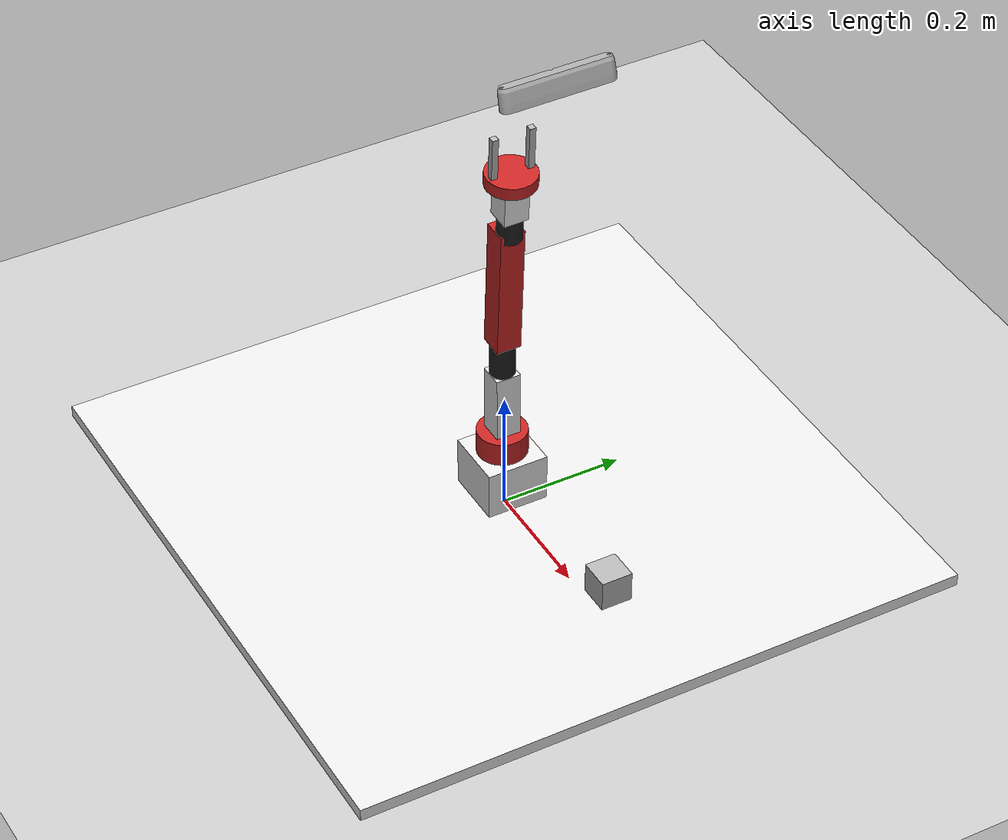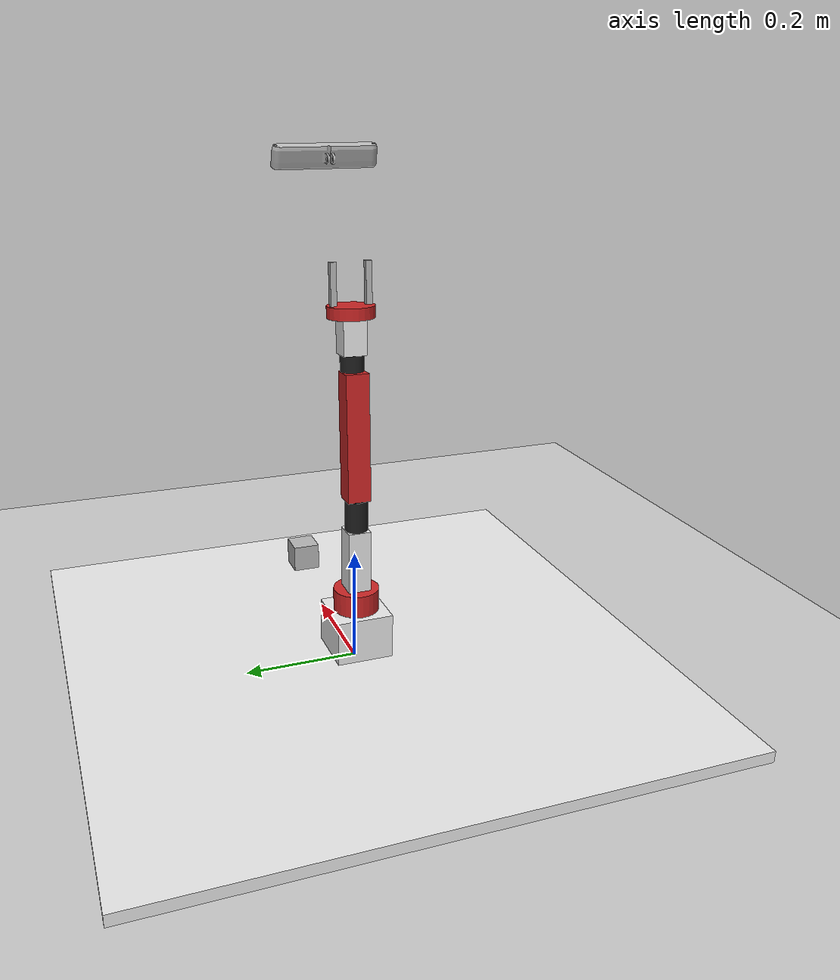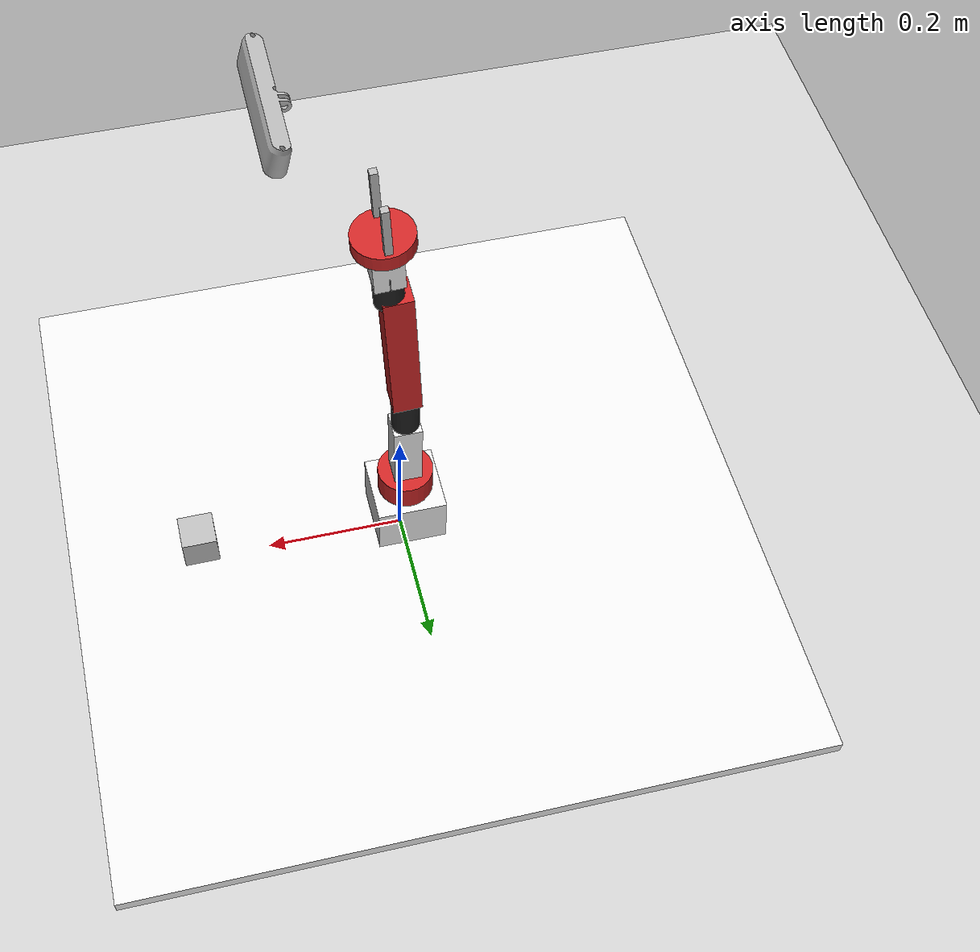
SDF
<sdf version="1.6">
 <world name="default">
  <light name="sun" type="directional">
   <pose>0 0 10 0 -0 0</pose>
   <diffuse>0.8 0.8 0.8 1</diffuse>
   <specular>0.1 0.1 0.1 1</specular>
   <attenuation>
    <range>1000</range>
    <constant>0.9</constant>
    <linear>0.01</linear>
    <quadratic>0.001</quadratic>
   </attenuation>
   <direction>-0.5 0.5 -1</direction>
  </light>
  <model name="ground_plane">
   <static>1</static>
   <link name="link">
    <collision name="collision">
     <geometry><plane><normal>0 0 1</normal><size>100 100</size></plane></geometry>
     <surface><friction><ode><mu>100</mu><mu2>50</mu2></ode></friction></surface>
    </collision>
    <visual name="visual">
     <cast_shadows>0</cast_shadows>
     <geometry><plane><normal>0 0 1</normal><size>100 100</size></plane></geometry>
     <material>
      <script><uri>file://media/materials/scripts/gazebo.material</uri><name>Gazebo/Grey</name></script>
     </material>
    </visual>
   </link>
  </model>
  <gravity>0 0 -9.8</gravity>
  <magnetic_field>6e-06 2.3e-05 -4.2e-05</magnetic_field>
  <atmosphere type="adiabatic"/>
  <physics name="default_physics" default="0" type="ode">
   <max_step_size>0.001</max_step_size>
   <real_time_factor>1</real_time_factor>
   <real_time_update_rate>1000</real_time_update_rate>
  </physics>
  <scene><ambient>0.4 0.4 0.4 1</ambient><background>0.7 0.7 0.7 1</background><shadows>1</shadows></scene>
  <spherical_coordinates>
   <surface_model>EARTH_WGS84</surface_model>
   <latitude_deg>0</latitude_deg>
   <longitude_deg>0</longitude_deg>
   <elevation>0</elevation>
   <heading_deg>0</heading_deg>
  </spherical_coordinates>
  <model name="seven_dof_arm">
   <link name="base_link">
    <inertial>
     <pose>0.026613 0.000111 0.148274 0 -0 0</pose>
     <mass>1.2247</mass>
     <inertia>
      <ixx>1.11989</ixx>
      <ixy>-1.6741e-05</ixy>
      <ixz>-0.0215074</ixz>
      <iyy>0.623738</iyy>
      <iyz>-8.81946e-05</iyz>
      <izz>1.00392</izz>
     </inertia>
    </inertial>
    <collision name="base_link_collision">
     <pose>0 0 0 1.57079 -0 0</pose>
     <geometry><box><size>0.1 0.1 0.1</size></box></geometry>
    </collision>
    <collision name="base_link_fixed_joint_lump__bottom_link_collision_1">
     <pose>0 0 -0.04 0 -0 0</pose>
     <geometry><box><size>1 1 0.02</size></box></geometry>
    </collision>
    <visual name="base_link_visual">
     <pose>0 0 0 1.57079 -0 0</pose>
     <geometry><box><size>0.1 0.1 0.1</size></box></geometry>
     <material>
      <script><name>Gazebo/White</name><uri>file://media/materials/scripts/gazebo.material</uri></script>
     </material>
    </visual>
    <visual name="base_link_fixed_joint_lump__bottom_link_visual_1">
     <pose>0 0 -0.04 0 -0 0</pose>
     <geometry><box><size>1 1 0.02</size></box></geometry>
     <material>
      <script><name>Gazebo/White</name><uri>file://media/materials/scripts/gazebo.material</uri></script>
     </material>
    </visual>
    <visual name="base_link_fixed_joint_lump__rgbd_camera_link_visual_2">
     <pose>0.15 0 0.8 0 1.309 0</pose>
     <geometry>
      <mesh>
       <scale>1 1 1</scale>
       <uri>/home/jan/catkin_ws/src/mastering_ros_robot_description_pkg/meshes/sensors/xtion_pro_live/xtion_pro_live.dae</uri>
      </mesh>
     </geometry>
     <material><script><uri>__default__</uri><name>__default__</name></script></material>
    </visual>
    <sensor name="rgbd_camera_frame_sensor" type="depth">
     <always_on>1</always_on>
     <update_rate>6</update_rate>
     <camera name="__default__">
      <horizontal_fov>1.01229</horizontal_fov>
      <image><format>R8G8B8</format><width>800</width><height>600</height></image>
      <clip><near>0.05</near><far>1.5</far></clip>
     </camera>
     <plugin name="camera_plugin" filename="libgazebo_ros_openni_kinect.so">
      <baseline>0.2</baseline>
      <alwaysOn>true</alwaysOn>
      <updateRate>20.0</updateRate>
      <cameraName>camera_ir</cameraName>
      <imageTopicName>/camera/color/image_raw</imageTopicName>
      <cameraInfoTopicName>/camera/color/camera_info</cameraInfoTopicName>
      <depthImageTopicName>/camera/depth/image_raw</depthImageTopicName>
      <depthImageCameraInfoTopicName>/camera/depth/camera_info</depthImageCameraInfoTopicName>
      <pointCloudTopicName>/camera/depth/points</pointCloudTopicName>
      <frameName>depth_camera_link</frameName>
      <pointCloudCutoff>0.05</pointCloudCutoff>
      <distortionK1>0</distortionK1>
      <distortionK2>0</distortionK2>
      <distortionK3>0</distortionK3>
      <distortionT1>0</distortionT1>
      <distortionT2>0</distortionT2>
      <CxPrime>0</CxPrime>
      <Cx>0</Cx>
      <Cy>0</Cy>
      <focalLength>0</focalLength>
      <hackBaseline>0</hackBaseline>
     </plugin>
     <pose>0.15 0 0.8 0 1.309 0</pose>
    </sensor>
    <sensor name="rgbd_camera_frame_sensor" type="depth">
     <always_on>1</always_on>
     <update_rate>6</update_rate>
     <camera name="__default__">
      <horizontal_fov>1.01229</horizontal_fov>
      <image><format>R8G8B8</format><width>800</width><height>600</height></image>
      <clip><near>0.05</near><far>1.5</far></clip>
     </camera>
     <plugin name="rgbd_camera_frame_controller" filename="libgazebo_ros_openni_kinect.so">
      <alwaysOn>true</alwaysOn>
      <updateRate>6.0</updateRate>
      <cameraName>rgbd_camera</cameraName>
      <imageTopicName>rgb/image_raw</imageTopicName>
      <cameraInfoTopicName>rgb/camera_info</cameraInfoTopicName>
      <pointCloudTopicName>rgb/points</pointCloudTopicName>
      <depthImageTopicName>depth/image_raw</depthImageTopicName>
      <depthImageCameraInfoTopicName>depth/camera_info</depthImageCameraInfoTopicName>
      <frameName>rgbd_camera_optical_frame</frameName>
      <pointCloudCutoff>0.05</pointCloudCutoff>
      <pointCloudCutoffMax>5</pointCloudCutoffMax>
      <rangeMax>1.5</rangeMax>
      <robotNamespace>/</robotNamespace>
     </plugin>
     <pose>0.15 0 0.8 0 1.309 0</pose>
    </sensor>
   </link>
   <link name="shoulder_pan_link">
    <pose>0 0 0.05 3.14159 1.57079 3.14159</pose>
    <inertial>
     <mass>1</mass>
     <inertia><ixx>1</ixx><ixy>0</ixy><ixz>0</ixz><iyy>0.5</iyy><iyz>0</iyz><izz>1</izz></inertia>
    </inertial>
    <collision name="shoulder_pan_link_collision">
     <pose>0 0 0 3.14159 1.57079 3.14159</pose>
     <geometry><cylinder><length>0.08</length><radius>0.04</radius></cylinder></geometry>
    </collision>
    <visual name="shoulder_pan_link_visual">
     <pose>0 0 0 3.14159 1.57079 3.14159</pose>
     <geometry><cylinder><length>0.08</length><radius>0.04</radius></cylinder></geometry>
     <material>
      <script><name>Gazebo/Red</name><uri>file://media/materials/scripts/gazebo.material</uri></script>
     </material>
    </visual>
   </link>
   <joint name="shoulder_pan_joint" type="revolute">
    <child>shoulder_pan_link</child>
    <parent>base_link</parent>
    <axis>
     <xyz>-1e-06 0 1</xyz>
     <limit><lower>-2.61799</lower><upper>1.98395</upper><effort>300</effort><velocity>1</velocity></limit>
     <dynamics>
      <damping>50</damping>
      <friction>1</friction>
      <spring_reference>0</spring_reference>
      <spring_stiffness>0</spring_stiffness>
     </dynamics>
     <use_parent_model_frame>1</use_parent_model_frame>
    </axis>
   </joint>
   <link name="shoulder_pitch_link">
    <pose>-0 0.0021 0.091 0 1e-06 1.5708</pose>
    <inertial>
     <mass>1</mass>
     <inertia><ixx>1</ixx><ixy>0</ixy><ixz>0</ixz><iyy>0.5</iyy><iyz>0</iyz><izz>1</izz></inertia>
    </inertial>
    <collision name="shoulder_pitch_link_collision">
     <pose>-0.002 0 0.04 3.14159 1.57079 3.14159</pose>
     <geometry><box><size>0.14 0.04 0.04</size></box></geometry>
    </collision>
    <visual name="shoulder_pitch_link_visual">
     <pose>-0.002 0 0.04 3.14159 1.57079 3.14159</pose>
     <geometry><box><size>0.14 0.04 0.04</size></box></geometry>
     <material>
      <script><name>Gazebo/White</name><uri>file://media/materials/scripts/gazebo.material</uri></script>
     </material>
    </visual>
   </link>
   <joint name="shoulder_pitch_joint" type="revolute">
    <child>shoulder_pitch_link</child>
    <parent>shoulder_pan_link</parent>
    <axis>
     <xyz>0 1 -1e-06</xyz>
     <limit><lower>-1.19963</lower><upper>1.89994</upper><effort>300</effort><velocity>1</velocity></limit>
     <dynamics>
      <damping>50</damping>
      <friction>1</friction>
      <spring_reference>0</spring_reference>
      <spring_stiffness>0</spring_stiffness>
     </dynamics>
     <use_parent_model_frame>1</use_parent_model_frame>
    </axis>
   </joint>
   <link name="elbow_roll_link">
    <pose>-0 0.0001 0.2116 -0.785403 1.57079 -1.57079</pose>
    <inertial>
     <mass>1</mass>
     <inertia><ixx>1</ixx><ixy>0</ixy><ixz>0</ixz><iyy>0.5</iyy><iyz>0</iyz><izz>1</izz></inertia>
    </inertial>
    <collision name="elbow_roll_link_collision">
     <pose>-0.015 0 -0 3.14159 1.57079 3.14159</pose>
     <geometry><cylinder><length>0.06</length><radius>0.02</radius></cylinder></geometry>
    </collision>
    <visual name="elbow_roll_link_visual">
     <pose>-0.015 0 -0 3.14159 1.57079 3.14159</pose>
     <geometry><cylinder><length>0.06</length><radius>0.02</radius></cylinder></geometry>
     <material>
      <script><name>Gazebo/Black</name><uri>file://media/materials/scripts/gazebo.material</uri></script>
     </material>
    </visual>
   </link>
   <joint name="elbow_roll_joint" type="revolute">
    <child>elbow_roll_link</child>
    <parent>shoulder_pitch_link</parent>
    <axis>
     <xyz>0 0 1</xyz>
     <limit><lower>-2.61799</lower><upper>0.705631</upper><effort>300</effort><velocity>1</velocity></limit>
     <dynamics>
      <damping>50</damping>
      <friction>1</friction>
      <spring_reference>0</spring_reference>
      <spring_stiffness>0</spring_stiffness>
     </dynamics>
     <use_parent_model_frame>1</use_parent_model_frame>
    </axis>
   </joint>
   <link name="elbow_pitch_link">
    <pose>-0 0.0001 0.2466 -3.08659 1e-06 1.5708</pose>
    <inertial>
     <mass>1</mass>
     <inertia><ixx>1</ixx><ixy>0</ixy><ixz>0</ixz><iyy>0.5</iyy><iyz>0</iyz><izz>1</izz></inertia>
    </inertial>
    <collision name="elbow_pitch_link_collision">
     <pose>0 0 -0.12 3.14159 1.57079 3.14159</pose>
     <geometry><box><size>0.22 0.04 0.04</size></box></geometry>
    </collision>
    <visual name="elbow_pitch_link_visual">
     <pose>0 0 -0.12 3.14159 1.57079 3.14159</pose>
     <geometry><box><size>0.22 0.04 0.04</size></box></geometry>
     <material>
      <script><name>Gazebo/Red</name><uri>file://media/materials/scripts/gazebo.material</uri></script>
     </material>
    </visual>
   </link>
   <joint name="elbow_pitch_joint" type="revolute">
    <child>elbow_pitch_link</child>
    <parent>elbow_roll_link</parent>
    <axis>
     <xyz>-3e-06 1 -1e-06</xyz>
     <limit><lower>-1.59534</lower><upper>1.93282</upper><effort>300</effort><velocity>1</velocity></limit>
     <dynamics>
      <damping>50</damping>
      <friction>1</friction>
      <spring_reference>0</spring_reference>
      <spring_stiffness>0</spring_stiffness>
     </dynamics>
     <use_parent_model_frame>1</use_parent_model_frame>
    </axis>
   </joint>
   <link name="wrist_roll_link">
    <pose>0.021721 0.000101 0.49378 1.5708 -1.5158 3e-06</pose>
    <inertial>
     <mass>1</mass>
     <inertia><ixx>1</ixx><ixy>0</ixy><ixz>0</ixz><iyy>0.5</iyy><iyz>0</iyz><izz>1</izz></inertia>
    </inertial>
    <collision name="wrist_roll_link_collision">
     <pose>0 0 0 3.14159 1.57079 3.14159</pose>
     <geometry><cylinder><length>0.06</length><radius>0.02</radius></cylinder></geometry>
    </collision>
    <visual name="wrist_roll_link_visual">
     <pose>0 0 0 3.14159 1.57079 3.14159</pose>
     <geometry><cylinder><length>0.06</length><radius>0.02</radius></cylinder></geometry>
     <material>
      <script><name>Gazebo/Black</name><uri>file://media/materials/scripts/gazebo.material</uri></script>
     </material>
    </visual>
   </link>
   <joint name="wrist_roll_joint" type="revolute">
    <child>wrist_roll_link</child>
    <parent>elbow_pitch_link</parent>
    <axis>
     <xyz>0.054972 0 0.998488</xyz>
     <limit><lower>-2.61799</lower><upper>2.61288</upper><effort>300</effort><velocity>1</velocity></limit>
     <dynamics>
      <damping>50</damping>
      <friction>1</friction>
      <spring_reference>0</spring_reference>
      <spring_stiffness>0</spring_stiffness>
     </dynamics>
     <use_parent_model_frame>1</use_parent_model_frame>
    </axis>
   </joint>
   <link name="wrist_pitch_link">
    <pose>0.021721 1e-06 0.49378 0.055 -1e-06 1.5708</pose>
    <inertial>
     <mass>1</mass>
     <inertia><ixx>1</ixx><ixy>0</ixy><ixz>0</ixz><iyy>0.5</iyy><iyz>0</iyz><izz>1</izz></inertia>
    </inertial>
    <collision name="wrist_pitch_link_collision">
     <pose>0 0 0.04 3.14159 1.57079 3.14159</pose>
     <geometry><box><size>0.06 0.04 0.04</size></box></geometry>
    </collision>
    <visual name="wrist_pitch_link_visual">
     <pose>0 0 0.04 3.14159 1.57079 3.14159</pose>
     <geometry><box><size>0.06 0.04 0.04</size></box></geometry>
     <material>
      <script><name>Gazebo/White</name><uri>file://media/materials/scripts/gazebo.material</uri></script>
     </material>
    </visual>
   </link>
   <joint name="wrist_pitch_joint" type="revolute">
    <child>wrist_pitch_link</child>
    <parent>wrist_roll_link</parent>
    <axis>
     <xyz>-5e-06 1 1e-06</xyz>
     <limit><lower>-1.59534</lower><upper>1.98395</upper><effort>300</effort><velocity>1</velocity></limit>
     <dynamics>
      <damping>50</damping>
      <friction>1</friction>
      <spring_reference>0</spring_reference>
      <spring_stiffness>0</spring_stiffness>
     </dynamics>
     <use_parent_model_frame>1</use_parent_model_frame>
    </axis>
   </joint>
   <link name="gripper_roll_link">
    <pose>0.026119 0 0.573659 -1e-06 -1.5158 3e-06</pose>
    <inertial>
     <mass>1</mass>
     <inertia><ixx>1</ixx><ixy>0</ixy><ixz>0</ixz><iyy>0.5</iyy><iyz>0</iyz><izz>1</izz></inertia>
    </inertial>
    <collision name="gripper_roll_link_collision">
     <pose>0 0 0 3.14159 1.57079 3.14159</pose>
     <geometry><cylinder><length>0.02</length><radius>0.04</radius></cylinder></geometry>
    </collision>
    <visual name="gripper_roll_link_visual">
     <pose>0 0 0 3.14159 1.57079 3.14159</pose>
     <geometry><cylinder><length>0.02</length><radius>0.04</radius></cylinder></geometry>
     <material>
      <script><name>Gazebo/Red</name><uri>file://media/materials/scripts/gazebo.material</uri></script>
     </material>
    </visual>
   </link>
   <joint name="gripper_roll_joint" type="revolute">
    <child>gripper_roll_link</child>
    <parent>wrist_pitch_link</parent>
    <axis>
     <xyz>0.054972 0 0.998488</xyz>
     <limit><lower>-2.61799</lower><upper>2.61288</upper><effort>300</effort><velocity>1</velocity></limit>
     <dynamics>
      <damping>50</damping>
      <friction>1</friction>
      <spring_reference>0</spring_reference>
      <spring_stiffness>0</spring_stiffness>
     </dynamics>
     <use_parent_model_frame>1</use_parent_model_frame>
    </axis>
   </joint>
   <link name="gripper_finger_link1">
    <pose>0.026119 0 0.573659 -1e-06 -1.5158 3e-06</pose>
    <inertial>
     <mass>1</mass>
     <inertia><ixx>1</ixx><ixy>0</ixy><ixz>0</ixz><iyy>0.5</iyy><iyz>0</iyz><izz>1</izz></inertia>
    </inertial>
    <visual name="gripper_finger_link1_visual">
     <pose>0.04 -0.03 0 0 -0 0</pose>
     <geometry><box><size>0.08 0.01 0.01</size></box></geometry>
    </visual>
   </link>
   <joint name="finger_joint1" type="prismatic">
    <child>gripper_finger_link1</child>
    <parent>gripper_roll_link</parent>
    <axis>
     <xyz>-1e-06 1 -0</xyz>
     <limit><lower>0</lower><upper>0.03</upper><effort>100</effort><velocity>1</velocity></limit>
     <dynamics>
      <damping>50</damping>
      <friction>1</friction>
      <spring_reference>0</spring_reference>
      <spring_stiffness>0</spring_stiffness>
     </dynamics>
     <use_parent_model_frame>1</use_parent_model_frame>
    </axis>
   </joint>
   <link name="gripper_finger_link2">
    <pose>0.026119 0 0.573659 -1e-06 -1.5158 3e-06</pose>
    <inertial>
     <mass>1</mass>
     <inertia><ixx>1</ixx><ixy>0</ixy><ixz>0</ixz><iyy>0.5</iyy><iyz>0</iyz><izz>1</izz></inertia>
    </inertial>
    <visual name="gripper_finger_link2_visual">
     <pose>0.04 0.03 0 0 -0 0</pose>
     <geometry><box><size>0.08 0.01 0.01</size></box></geometry>
    </visual>
   </link>
   <joint name="finger_joint2" type="prismatic">
    <child>gripper_finger_link2</child>
    <parent>gripper_roll_link</parent>
    <axis>
     <xyz>-1e-06 1 -0</xyz>
     <limit><lower>-0.03</lower><upper>0</upper><effort>1</effort><velocity>1</velocity></limit>
     <dynamics>
      <damping>50</damping>
      <friction>1</friction>
      <spring_reference>0</spring_reference>
      <spring_stiffness>0</spring_stiffness>
     </dynamics>
     <use_parent_model_frame>1</use_parent_model_frame>
    </axis>
   </joint>
   <static>0</static>
   <plugin name="gazebo_ros_control" filename="libgazebo_ros_control.so">
    <robotNamespace>/seven_dof_arm</robotNamespace>
   </plugin>
   <pose>-0.007648 6e-06 0.050001 1e-06 -0 -0.000239</pose>
  </model>
  <model name="aruco_cube">
   <static>0</static>
   <link name="link">
    <inertial>
     <mass>0.05</mass>
     <inertia>
      <ixx>5.2083e-05</ixx>
      <ixy>0</ixy>
      <ixz>0</ixz>
      <iyy>5.2083e-05</iyy>
      <iyz>0</iyz>
      <izz>2.0833e-05</izz>
     </inertia>
    </inertial>
    <collision name="colision">
     <geometry><box><size>0.05 0.05 0.1</size></box></geometry>
     <surface>
      <friction><ode><mu>30</mu><mu2>30</mu2><fdir1>0 0 0</fdir1></ode></friction>
      <contact><ode><kp>1e+06</kp><kd>100</kd><min_depth>0.0025</min_depth><max_vel>1</max_vel></ode></contact>
     </surface>
    </collision>
    <visual name="visual1">
     <geometry><mesh><uri>model://aruco_cube/meshes/aruco_cube_5cm.dae</uri><scale>1 1 1</scale></mesh></geometry>
    </visual>
    <velocity_decay><linear>0</linear><angular>0</angular></velocity_decay>
   </link>
   <pose>0.300543 0.007833 0.07 1e-06 -0 -2.7e-05</pose>
  </model>
 </world>
</sdf>
